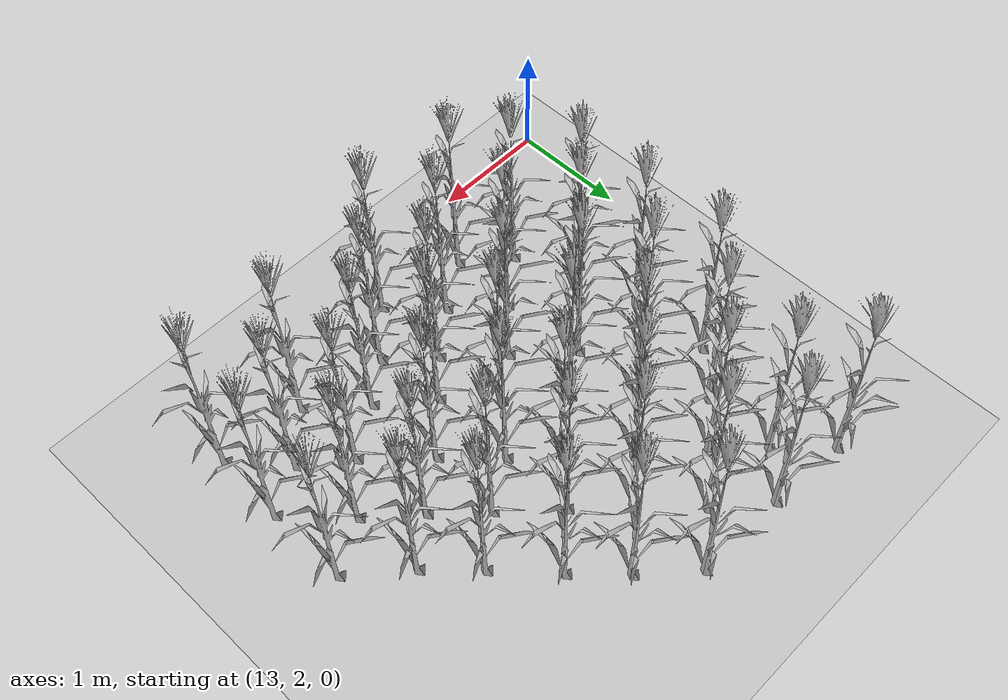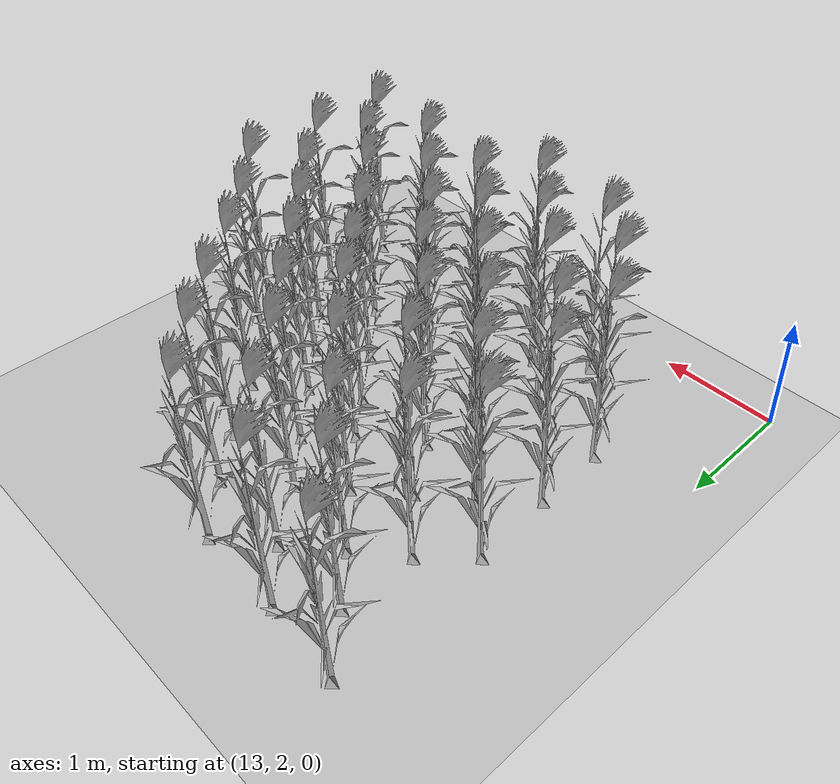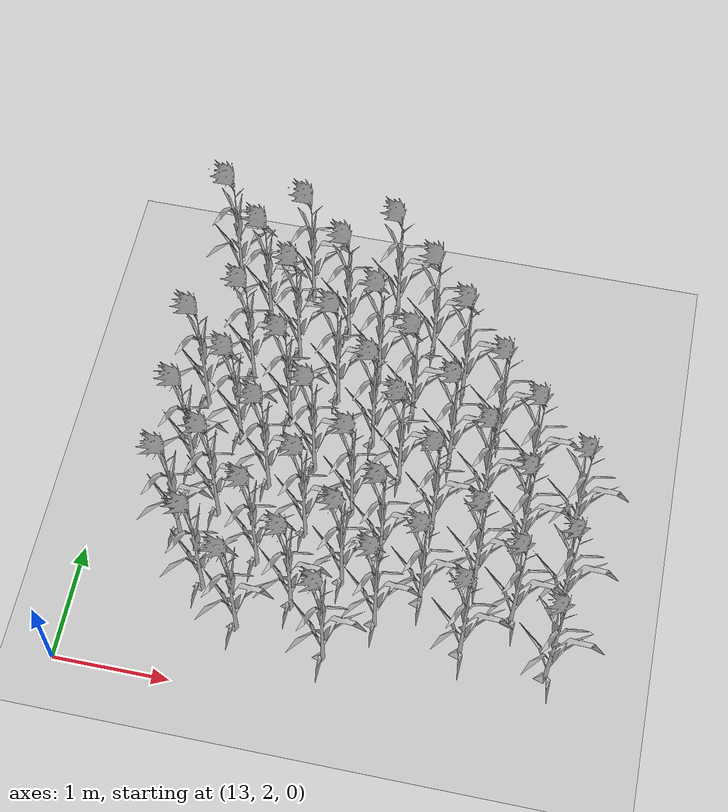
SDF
<sdf version="1.7">
 <world name="farmland_world">
  <model name="ground_plane">
   <static>1</static>
   <link name="link">
    <collision name="collision">
     <geometry><plane><normal>0 0 1</normal><size>40.0 40.0</size></plane></geometry>
     <surface><friction><ode><mu>100</mu><mu2>50</mu2></ode></friction></surface>
    </collision>
    <visual name="visual">
     <cast_shadows>0</cast_shadows>
     <geometry><plane><normal>0 0 1</normal><size>40.0 40.0</size></plane></geometry>
     <material>
      <script><uri>file://media/materials/scripts/gazebo.material</uri><name>Gazebo/Grey</name></script>
     </material>
    </visual>
   </link>
  </model>
  <model name="tree_3_616">
   <static>1</static>
   <link name="link">
    <collision name="collision">
     <geometry><mesh><uri>model://Corn_low_poly/corn.obj</uri><scale>1 1 1</scale></mesh></geometry>
     <surface><friction><ode><mu>100</mu><mu2>50</mu2></ode></friction></surface>
    </collision>
    <visual name="visual">
     <geometry><mesh><uri>model://Corn_low_poly/corn.obj</uri><scale>1 1 1</scale></mesh></geometry>
    </visual>
   </link>
   <pose>14.440695477115419 2.5765086364169063 0 0 0 0</pose>
  </model>
  <model name="tree_3_617">
   <static>1</static>
   <link name="link">
    <collision name="collision">
     <geometry><mesh><uri>model://Corn_low_poly/corn.obj</uri><scale>1 1 1</scale></mesh></geometry>
     <surface><friction><ode><mu>100</mu><mu2>50</mu2></ode></friction></surface>
    </collision>
    <visual name="visual">
     <geometry><mesh><uri>model://Corn_low_poly/corn.obj</uri><scale>1 1 1</scale></mesh></geometry>
    </visual>
   </link>
   <pose>14.07942251070082 2.8719822875774326 0 0 0 0</pose>
  </model>
  <model name="tree_3_618">
   <static>1</static>
   <link name="link">
    <collision name="collision">
     <geometry><mesh><uri>model://Corn_low_poly/corn.obj</uri><scale>1 1 1</scale></mesh></geometry>
     <surface><friction><ode><mu>100</mu><mu2>50</mu2></ode></friction></surface>
    </collision>
    <visual name="visual">
     <geometry><mesh><uri>model://Corn_low_poly/corn.obj</uri><scale>1 1 1</scale></mesh></geometry>
    </visual>
   </link>
   <pose>13.764562885501382 3.3216358311361263 0 0 0 0</pose>
  </model>
  <model name="tree_3_659">
   <static>1</static>
   <link name="link">
    <collision name="collision">
     <geometry><mesh><uri>model://Corn_low_poly/corn.obj</uri><scale>1 1 1</scale></mesh></geometry>
     <surface><friction><ode><mu>100</mu><mu2>50</mu2></ode></friction></surface>
    </collision>
    <visual name="visual">
     <geometry><mesh><uri>model://Corn_low_poly/corn.obj</uri><scale>1 1 1</scale></mesh></geometry>
    </visual>
   </link>
   <pose>15.201547559281737 2.4583170163859136 0 0 0 0</pose>
  </model>
  <model name="tree_3_660">
   <static>1</static>
   <link name="link">
    <collision name="collision">
     <geometry><mesh><uri>model://Corn_low_poly/corn.obj</uri><scale>1 1 1</scale></mesh></geometry>
     <surface><friction><ode><mu>100</mu><mu2>50</mu2></ode></friction></surface>
    </collision>
    <visual name="visual">
     <geometry><mesh><uri>model://Corn_low_poly/corn.obj</uri><scale>1 1 1</scale></mesh></geometry>
    </visual>
   </link>
   <pose>14.846632839888885 2.8489875830432916 0 0 0 0</pose>
  </model>
  <model name="tree_3_661">
   <static>1</static>
   <link name="link">
    <collision name="collision">
     <geometry><mesh><uri>model://Corn_low_poly/corn.obj</uri><scale>1 1 1</scale></mesh></geometry>
     <surface><friction><ode><mu>100</mu><mu2>50</mu2></ode></friction></surface>
    </collision>
    <visual name="visual">
     <geometry><mesh><uri>model://Corn_low_poly/corn.obj</uri><scale>1 1 1</scale></mesh></geometry>
    </visual>
   </link>
   <pose>14.473812455540335 3.1852201297084557 0 0 0 0</pose>
  </model>
  <model name="tree_3_662">
   <static>1</static>
   <link name="link">
    <collision name="collision">
     <geometry><mesh><uri>model://Corn_low_poly/corn.obj</uri><scale>1 1 1</scale></mesh></geometry>
     <surface><friction><ode><mu>100</mu><mu2>50</mu2></ode></friction></surface>
    </collision>
    <visual name="visual">
     <geometry><mesh><uri>model://Corn_low_poly/corn.obj</uri><scale>1 1 1</scale></mesh></geometry>
    </visual>
   </link>
   <pose>14.0417962159465 3.5700517512768966 0 0 0 0</pose>
  </model>
  <model name="tree_3_663">
   <static>1</static>
   <link name="link">
    <collision name="collision">
     <geometry><mesh><uri>model://Corn_low_poly/corn.obj</uri><scale>1 1 1</scale></mesh></geometry>
     <surface><friction><ode><mu>100</mu><mu2>50</mu2></ode></friction></surface>
    </collision>
    <visual name="visual">
     <geometry><mesh><uri>model://Corn_low_poly/corn.obj</uri><scale>1 1 1</scale></mesh></geometry>
    </visual>
   </link>
   <pose>13.739094768803097 3.9369179962966823 0 0 0 0</pose>
  </model>
  <model name="tree_3_702">
   <static>1</static>
   <link name="link">
    <collision name="collision">
     <geometry><mesh><uri>model://Corn_low_poly/corn.obj</uri><scale>1 1 1</scale></mesh></geometry>
     <surface><friction><ode><mu>100</mu><mu2>50</mu2></ode></friction></surface>
    </collision>
    <visual name="visual">
     <geometry><mesh><uri>model://Corn_low_poly/corn.obj</uri><scale>1 1 1</scale></mesh></geometry>
    </visual>
   </link>
   <pose>15.560490428064279 2.8275983477689794 0 0 0 0</pose>
  </model>
  <model name="tree_3_703">
   <static>1</static>
   <link name="link">
    <collision name="collision">
     <geometry><mesh><uri>model://Corn_low_poly/corn.obj</uri><scale>1 1 1</scale></mesh></geometry>
     <surface><friction><ode><mu>100</mu><mu2>50</mu2></ode></friction></surface>
    </collision>
    <visual name="visual">
     <geometry><mesh><uri>model://Corn_low_poly/corn.obj</uri><scale>1 1 1</scale></mesh></geometry>
    </visual>
   </link>
   <pose>15.217278089482964 3.143300097452389 0 0 0 0</pose>
  </model>
  <model name="tree_3_704">
   <static>1</static>
   <link name="link">
    <collision name="collision">
     <geometry><mesh><uri>model://Corn_low_poly/corn.obj</uri><scale>1 1 1</scale></mesh></geometry>
     <surface><friction><ode><mu>100</mu><mu2>50</mu2></ode></friction></surface>
    </collision>
    <visual name="visual">
     <geometry><mesh><uri>model://Corn_low_poly/corn.obj</uri><scale>1 1 1</scale></mesh></geometry>
    </visual>
   </link>
   <pose>14.816926431607579 3.530609991975746 0 0 0 0</pose>
  </model>
  <model name="tree_3_705">
   <static>1</static>
   <link name="link">
    <collision name="collision">
     <geometry><mesh><uri>model://Corn_low_poly/corn.obj</uri><scale>1 1 1</scale></mesh></geometry>
     <surface><friction><ode><mu>100</mu><mu2>50</mu2></ode></friction></surface>
    </collision>
    <visual name="visual">
     <geometry><mesh><uri>model://Corn_low_poly/corn.obj</uri><scale>1 1 1</scale></mesh></geometry>
    </visual>
   </link>
   <pose>14.408044580017085 3.913873140644905 0 0 0 0</pose>
  </model>
  <model name="tree_3_706">
   <static>1</static>
   <link name="link">
    <collision name="collision">
     <geometry><mesh><uri>model://Corn_low_poly/corn.obj</uri><scale>1 1 1</scale></mesh></geometry>
     <surface><friction><ode><mu>100</mu><mu2>50</mu2></ode></friction></surface>
    </collision>
    <visual name="visual">
     <geometry><mesh><uri>model://Corn_low_poly/corn.obj</uri><scale>1 1 1</scale></mesh></geometry>
    </visual>
   </link>
   <pose>14.07368571227841 4.298654380495563 0 0 0 0</pose>
  </model>
  <model name="tree_3_707">
   <static>1</static>
   <link name="link">
    <collision name="collision">
     <geometry><mesh><uri>model://Corn_low_poly/corn.obj</uri><scale>1 1 1</scale></mesh></geometry>
     <surface><friction><ode><mu>100</mu><mu2>50</mu2></ode></friction></surface>
    </collision>
    <visual name="visual">
     <geometry><mesh><uri>model://Corn_low_poly/corn.obj</uri><scale>1 1 1</scale></mesh></geometry>
    </visual>
   </link>
   <pose>13.697252844058651 4.6138031903636 0 0 0 0</pose>
  </model>
  <model name="tree_3_743">
   <static>1</static>
   <link name="link">
    <collision name="collision">
     <geometry><mesh><uri>model://Corn_low_poly/corn.obj</uri><scale>1 1 1</scale></mesh></geometry>
     <surface><friction><ode><mu>100</mu><mu2>50</mu2></ode></friction></surface>
    </collision>
    <visual name="visual">
     <geometry><mesh><uri>model://Corn_low_poly/corn.obj</uri><scale>1 1 1</scale></mesh></geometry>
    </visual>
   </link>
   <pose>16.29755552883714 2.7134226321299457 0 0 0 0</pose>
  </model>
  <model name="tree_3_744">
   <static>1</static>
   <link name="link">
    <collision name="collision">
     <geometry><mesh><uri>model://Corn_low_poly/corn.obj</uri><scale>1 1 1</scale></mesh></geometry>
     <surface><friction><ode><mu>100</mu><mu2>50</mu2></ode></friction></surface>
    </collision>
    <visual name="visual">
     <geometry><mesh><uri>model://Corn_low_poly/corn.obj</uri><scale>1 1 1</scale></mesh></geometry>
    </visual>
   </link>
   <pose>15.89314587264422 3.090039532888849 0 0 0 0</pose>
  </model>
  <model name="tree_3_745">
   <static>1</static>
   <link name="link">
    <collision name="collision">
     <geometry><mesh><uri>model://Corn_low_poly/corn.obj</uri><scale>1 1 1</scale></mesh></geometry>
     <surface><friction><ode><mu>100</mu><mu2>50</mu2></ode></friction></surface>
    </collision>
    <visual name="visual">
     <geometry><mesh><uri>model://Corn_low_poly/corn.obj</uri><scale>1 1 1</scale></mesh></geometry>
    </visual>
   </link>
   <pose>15.494683568183094 3.426939470575066 0 0 0 0</pose>
  </model>
  <model name="tree_3_746">
   <static>1</static>
   <link name="link">
    <collision name="collision">
     <geometry><mesh><uri>model://Corn_low_poly/corn.obj</uri><scale>1 1 1</scale></mesh></geometry>
     <surface><friction><ode><mu>100</mu><mu2>50</mu2></ode></friction></surface>
    </collision>
    <visual name="visual">
     <geometry><mesh><uri>model://Corn_low_poly/corn.obj</uri><scale>1 1 1</scale></mesh></geometry>
    </visual>
   </link>
   <pose>15.168296383864407 3.7978831916636486 0 0 0 0</pose>
  </model>
  <model name="tree_3_747">
   <static>1</static>
   <link name="link">
    <collision name="collision">
     <geometry><mesh><uri>model://Corn_low_poly/corn.obj</uri><scale>1 1 1</scale></mesh></geometry>
     <surface><friction><ode><mu>100</mu><mu2>50</mu2></ode></friction></surface>
    </collision>
    <visual name="visual">
     <geometry><mesh><uri>model://Corn_low_poly/corn.obj</uri><scale>1 1 1</scale></mesh></geometry>
    </visual>
   </link>
   <pose>14.763627810646375 4.152448014705416 0 0 0 0</pose>
  </model>
  <model name="tree_3_748">
   <static>1</static>
   <link name="link">
    <collision name="collision">
     <geometry><mesh><uri>model://Corn_low_poly/corn.obj</uri><scale>1 1 1</scale></mesh></geometry>
     <surface><friction><ode><mu>100</mu><mu2>50</mu2></ode></friction></surface>
    </collision>
    <visual name="visual">
     <geometry><mesh><uri>model://Corn_low_poly/corn.obj</uri><scale>1 1 1</scale></mesh></geometry>
    </visual>
   </link>
   <pose>14.455400989835384 4.5654630174877955 0 0 0 0</pose>
  </model>
  <model name="tree_3_749">
   <static>1</static>
   <link name="link">
    <collision name="collision">
     <geometry><mesh><uri>model://Corn_low_poly/corn.obj</uri><scale>1 1 1</scale></mesh></geometry>
     <surface><friction><ode><mu>100</mu><mu2>50</mu2></ode></friction></surface>
    </collision>
    <visual name="visual">
     <geometry><mesh><uri>model://Corn_low_poly/corn.obj</uri><scale>1 1 1</scale></mesh></geometry>
    </visual>
   </link>
   <pose>14.032276438547026 4.95359944199831 0 0 0 0</pose>
  </model>
  <model name="tree_3_783">
   <static>1</static>
   <link name="link">
    <collision name="collision">
     <geometry><mesh><uri>model://Corn_low_poly/corn.obj</uri><scale>1 1 1</scale></mesh></geometry>
     <surface><friction><ode><mu>100</mu><mu2>50</mu2></ode></friction></surface>
    </collision>
    <visual name="visual">
     <geometry><mesh><uri>model://Corn_low_poly/corn.obj</uri><scale>1 1 1</scale></mesh></geometry>
    </visual>
   </link>
   <pose>17.017105111366547 2.6507123530221914 0 0 0 0</pose>
  </model>
  <model name="tree_3_784">
   <static>1</static>
   <link name="link">
    <collision name="collision">
     <geometry><mesh><uri>model://Corn_low_poly/corn.obj</uri><scale>1 1 1</scale></mesh></geometry>
     <surface><friction><ode><mu>100</mu><mu2>50</mu2></ode></friction></surface>
    </collision>
    <visual name="visual">
     <geometry><mesh><uri>model://Corn_low_poly/corn.obj</uri><scale>1 1 1</scale></mesh></geometry>
    </visual>
   </link>
   <pose>16.66511876796996 3.0741739481896926 0 0 0 0</pose>
  </model>
  <model name="tree_3_785">
   <static>1</static>
   <link name="link">
    <collision name="collision">
     <geometry><mesh><uri>model://Corn_low_poly/corn.obj</uri><scale>1 1 1</scale></mesh></geometry>
     <surface><friction><ode><mu>100</mu><mu2>50</mu2></ode></friction></surface>
    </collision>
    <visual name="visual">
     <geometry><mesh><uri>model://Corn_low_poly/corn.obj</uri><scale>1 1 1</scale></mesh></geometry>
    </visual>
   </link>
   <pose>16.307615940005274 3.361080794969775 0 0 0 0</pose>
  </model>
  <model name="tree_3_786">
   <static>1</static>
   <link name="link">
    <collision name="collision">
     <geometry><mesh><uri>model://Corn_low_poly/corn.obj</uri><scale>1 1 1</scale></mesh></geometry>
     <surface><friction><ode><mu>100</mu><mu2>50</mu2></ode></friction></surface>
    </collision>
    <visual name="visual">
     <geometry><mesh><uri>model://Corn_low_poly/corn.obj</uri><scale>1 1 1</scale></mesh></geometry>
    </visual>
   </link>
   <pose>15.87256690872912 3.7921915019081776 0 0 0 0</pose>
  </model>
  <model name="tree_3_787">
   <static>1</static>
   <link name="link">
    <collision name="collision">
     <geometry><mesh><uri>model://Corn_low_poly/corn.obj</uri><scale>1 1 1</scale></mesh></geometry>
     <surface><friction><ode><mu>100</mu><mu2>50</mu2></ode></friction></surface>
    </collision>
    <visual name="visual">
     <geometry><mesh><uri>model://Corn_low_poly/corn.obj</uri><scale>1 1 1</scale></mesh></geometry>
    </visual>
   </link>
   <pose>15.507934737041671 4.178529077290255 0 0 0 0</pose>
  </model>
  <model name="tree_3_788">
   <static>1</static>
   <link name="link">
    <collision name="collision">
     <geometry><mesh><uri>model://Corn_low_poly/corn.obj</uri><scale>1 1 1</scale></mesh></geometry>
     <surface><friction><ode><mu>100</mu><mu2>50</mu2></ode></friction></surface>
    </collision>
    <visual name="visual">
     <geometry><mesh><uri>model://Corn_low_poly/corn.obj</uri><scale>1 1 1</scale></mesh></geometry>
    </visual>
   </link>
   <pose>15.213080756897565 4.488508257645867 0 0 0 0</pose>
  </model>
  <model name="tree_3_789">
   <static>1</static>
   <link name="link">
    <collision name="collision">
     <geometry><mesh><uri>model://Corn_low_poly/corn.obj</uri><scale>1 1 1</scale></mesh></geometry>
     <surface><friction><ode><mu>100</mu><mu2>50</mu2></ode></friction></surface>
    </collision>
    <visual name="visual">
     <geometry><mesh><uri>model://Corn_low_poly/corn.obj</uri><scale>1 1 1</scale></mesh></geometry>
    </visual>
   </link>
   <pose>14.822672054244405 4.868167691019243 0 0 0 0</pose>
  </model>
  <model name="tree_3_790">
   <static>1</static>
   <link name="link">
    <collision name="collision">
     <geometry><mesh><uri>model://Corn_low_poly/corn.obj</uri><scale>1 1 1</scale></mesh></geometry>
     <surface><friction><ode><mu>100</mu><mu2>50</mu2></ode></friction></surface>
    </collision>
    <visual name="visual">
     <geometry><mesh><uri>model://Corn_low_poly/corn.obj</uri><scale>1 1 1</scale></mesh></geometry>
    </visual>
   </link>
   <pose>14.390035843404057 5.248338637536003 0 0 0 0</pose>
  </model>
  <model name="tree_3_791">
   <static>1</static>
   <link name="link">
    <collision name="collision">
     <geometry><mesh><uri>model://Corn_low_poly/corn.obj</uri><scale>1 1 1</scale></mesh></geometry>
     <surface><friction><ode><mu>100</mu><mu2>50</mu2></ode></friction></surface>
    </collision>
    <visual name="visual">
     <geometry><mesh><uri>model://Corn_low_poly/corn.obj</uri><scale>1 1 1</scale></mesh></geometry>
    </visual>
   </link>
   <pose>14.052032278444765 5.5693515095456245 0 0 0 0</pose>
  </model>
  <model name="tree_3_792">
   <static>1</static>
   <link name="link">
    <collision name="collision">
     <geometry><mesh><uri>model://Corn_low_poly/corn.obj</uri><scale>1 1 1</scale></mesh></geometry>
     <surface><friction><ode><mu>100</mu><mu2>50</mu2></ode></friction></surface>
    </collision>
    <visual name="visual">
     <geometry><mesh><uri>model://Corn_low_poly/corn.obj</uri><scale>1 1 1</scale></mesh></geometry>
    </visual>
   </link>
   <pose>13.688982982736114 5.943607267674965 0 0 0 0</pose>
  </model>
  <model name="tree_3_824">
   <static>1</static>
   <link name="link">
    <collision name="collision">
     <geometry><mesh><uri>model://Corn_low_poly/corn.obj</uri><scale>1 1 1</scale></mesh></geometry>
     <surface><friction><ode><mu>100</mu><mu2>50</mu2></ode></friction></surface>
    </collision>
    <visual name="visual">
     <geometry><mesh><uri>model://Corn_low_poly/corn.obj</uri><scale>1 1 1</scale></mesh></geometry>
    </visual>
   </link>
   <pose>17.04640537910903 3.2814521406592116 0 0 0 0</pose>
  </model>
  <model name="tree_3_825">
   <static>1</static>
   <link name="link">
    <collision name="collision">
     <geometry><mesh><uri>model://Corn_low_poly/corn.obj</uri><scale>1 1 1</scale></mesh></geometry>
     <surface><friction><ode><mu>100</mu><mu2>50</mu2></ode></friction></surface>
    </collision>
    <visual name="visual">
     <geometry><mesh><uri>model://Corn_low_poly/corn.obj</uri><scale>1 1 1</scale></mesh></geometry>
    </visual>
   </link>
   <pose>16.630116039284307 3.740329247899244 0 0 0 0</pose>
  </model>
  <model name="tree_3_826">
   <static>1</static>
   <link name="link">
    <collision name="collision">
     <geometry><mesh><uri>model://Corn_low_poly/corn.obj</uri><scale>1 1 1</scale></mesh></geometry>
     <surface><friction><ode><mu>100</mu><mu2>50</mu2></ode></friction></surface>
    </collision>
    <visual name="visual">
     <geometry><mesh><uri>model://Corn_low_poly/corn.obj</uri><scale>1 1 1</scale></mesh></geometry>
    </visual>
   </link>
   <pose>16.257503773718778 4.080673534207793 0 0 0 0</pose>
  </model>
  <model name="tree_3_827">
   <static>1</static>
   <link name="link">
    <collision name="collision">
     <geometry><mesh><uri>model://Corn_low_poly/corn.obj</uri><scale>1 1 1</scale></mesh></geometry>
     <surface><friction><ode><mu>100</mu><mu2>50</mu2></ode></friction></surface>
    </collision>
    <visual name="visual">
     <geometry><mesh><uri>model://Corn_low_poly/corn.obj</uri><scale>1 1 1</scale></mesh></geometry>
    </visual>
   </link>
   <pose>15.904255680582187 4.421952890589127 0 0 0 0</pose>
  </model>
  <model name="tree_3_828">
   <static>1</static>
   <link name="link">
    <collision name="collision">
     <geometry><mesh><uri>model://Corn_low_poly/corn.obj</uri><scale>1 1 1</scale></mesh></geometry>
     <surface><friction><ode><mu>100</mu><mu2>50</mu2></ode></friction></surface>
    </collision>
    <visual name="visual">
     <geometry><mesh><uri>model://Corn_low_poly/corn.obj</uri><scale>1 1 1</scale></mesh></geometry>
    </visual>
   </link>
   <pose>15.504219276288397 4.806353872562663 0 0 0 0</pose>
  </model>
  <model name="tree_3_829">
   <static>1</static>
   <link name="link">
    <collision name="collision">
     <geometry><mesh><uri>model://Corn_low_poly/corn.obj</uri><scale>1 1 1</scale></mesh></geometry>
     <surface><friction><ode><mu>100</mu><mu2>50</mu2></ode></friction></surface>
    </collision>
    <visual name="visual">
     <geometry><mesh><uri>model://Corn_low_poly/corn.obj</uri><scale>1 1 1</scale></mesh></geometry>
    </visual>
   </link>
   <pose>15.142088846813275 5.141381006108624 0 0 0 0</pose>
  </model>
  <model name="tree_3_830">
   <static>1</static>
   <link name="link">
    <collision name="collision">
     <geometry><mesh><uri>model://Corn_low_poly/corn.obj</uri><scale>1 1 1</scale></mesh></geometry>
     <surface><friction><ode><mu>100</mu><mu2>50</mu2></ode></friction></surface>
    </collision>
    <visual name="visual">
     <geometry><mesh><uri>model://Corn_low_poly/corn.obj</uri><scale>1 1 1</scale></mesh></geometry>
    </visual>
   </link>
   <pose>14.776752509156008 5.55407950045626 0 0 0 0</pose>
  </model>
  <model name="tree_3_831">
   <static>1</static>
   <link name="link">
    <collision name="collision">
     <geometry><mesh><uri>model://Corn_low_poly/corn.obj</uri><scale>1 1 1</scale></mesh></geometry>
     <surface><friction><ode><mu>100</mu><mu2>50</mu2></ode></friction></surface>
    </collision>
    <visual name="visual">
     <geometry><mesh><uri>model://Corn_low_poly/corn.obj</uri><scale>1 1 1</scale></mesh></geometry>
    </visual>
   </link>
   <pose>14.379890062649936 5.89088262661702 0 0 0 0</pose>
  </model>
  <model name="tree_3_864">
   <static>1</static>
   <link name="link">
    <collision name="collision">
     <geometry><mesh><uri>model://Corn_low_poly/corn.obj</uri><scale>1 1 1</scale></mesh></geometry>
     <surface><friction><ode><mu>100</mu><mu2>50</mu2></ode></friction></surface>
    </collision>
    <visual name="visual">
     <geometry><mesh><uri>model://Corn_low_poly/corn.obj</uri><scale>1 1 1</scale></mesh></geometry>
    </visual>
   </link>
   <pose>17.044913154300108 3.981839935249558 0 0 0 0</pose>
  </model>
  <model name="tree_3_865">
   <static>1</static>
   <link name="link">
    <collision name="collision">
     <geometry><mesh><uri>model://Corn_low_poly/corn.obj</uri><scale>1 1 1</scale></mesh></geometry>
     <surface><friction><ode><mu>100</mu><mu2>50</mu2></ode></friction></surface>
    </collision>
    <visual name="visual">
     <geometry><mesh><uri>model://Corn_low_poly/corn.obj</uri><scale>1 1 1</scale></mesh></geometry>
    </visual>
   </link>
   <pose>16.613825036628267 4.360738640393921 0 0 0 0</pose>
  </model>
  <model name="tree_3_866">
   <static>1</static>
   <link name="link">
    <collision name="collision">
     <geometry><mesh><uri>model://Corn_low_poly/corn.obj</uri><scale>1 1 1</scale></mesh></geometry>
     <surface><friction><ode><mu>100</mu><mu2>50</mu2></ode></friction></surface>
    </collision>
    <visual name="visual">
     <geometry><mesh><uri>model://Corn_low_poly/corn.obj</uri><scale>1 1 1</scale></mesh></geometry>
    </visual>
   </link>
   <pose>16.27597637255482 4.720876040968208 0 0 0 0</pose>
  </model>
  <model name="tree_3_867">
   <static>1</static>
   <link name="link">
    <collision name="collision">
     <geometry><mesh><uri>model://Corn_low_poly/corn.obj</uri><scale>1 1 1</scale></mesh></geometry>
     <surface><friction><ode><mu>100</mu><mu2>50</mu2></ode></friction></surface>
    </collision>
    <visual name="visual">
     <geometry><mesh><uri>model://Corn_low_poly/corn.obj</uri><scale>1 1 1</scale></mesh></geometry>
    </visual>
   </link>
   <pose>15.899954184656114 5.151421714853888 0 0 0 0</pose>
  </model>
  <model name="tree_3_868">
   <static>1</static>
   <link name="link">
    <collision name="collision">
     <geometry><mesh><uri>model://Corn_low_poly/corn.obj</uri><scale>1 1 1</scale></mesh></geometry>
     <surface><friction><ode><mu>100</mu><mu2>50</mu2></ode></friction></surface>
    </collision>
    <visual name="visual">
     <geometry><mesh><uri>model://Corn_low_poly/corn.obj</uri><scale>1 1 1</scale></mesh></geometry>
    </visual>
   </link>
   <pose>15.567531882007533 5.506783878505464 0 0 0 0</pose>
  </model>
  <model name="tree_3_869">
   <static>1</static>
   <link name="link">
    <collision name="collision">
     <geometry><mesh><uri>model://Corn_low_poly/corn.obj</uri><scale>1 1 1</scale></mesh></geometry>
     <surface><friction><ode><mu>100</mu><mu2>50</mu2></ode></friction></surface>
    </collision>
    <visual name="visual">
     <geometry><mesh><uri>model://Corn_low_poly/corn.obj</uri><scale>1 1 1</scale></mesh></geometry>
    </visual>
   </link>
   <pose>15.173458503340145 5.864668245657482 0 0 0 0</pose>
  </model>
 </world>
</sdf>
